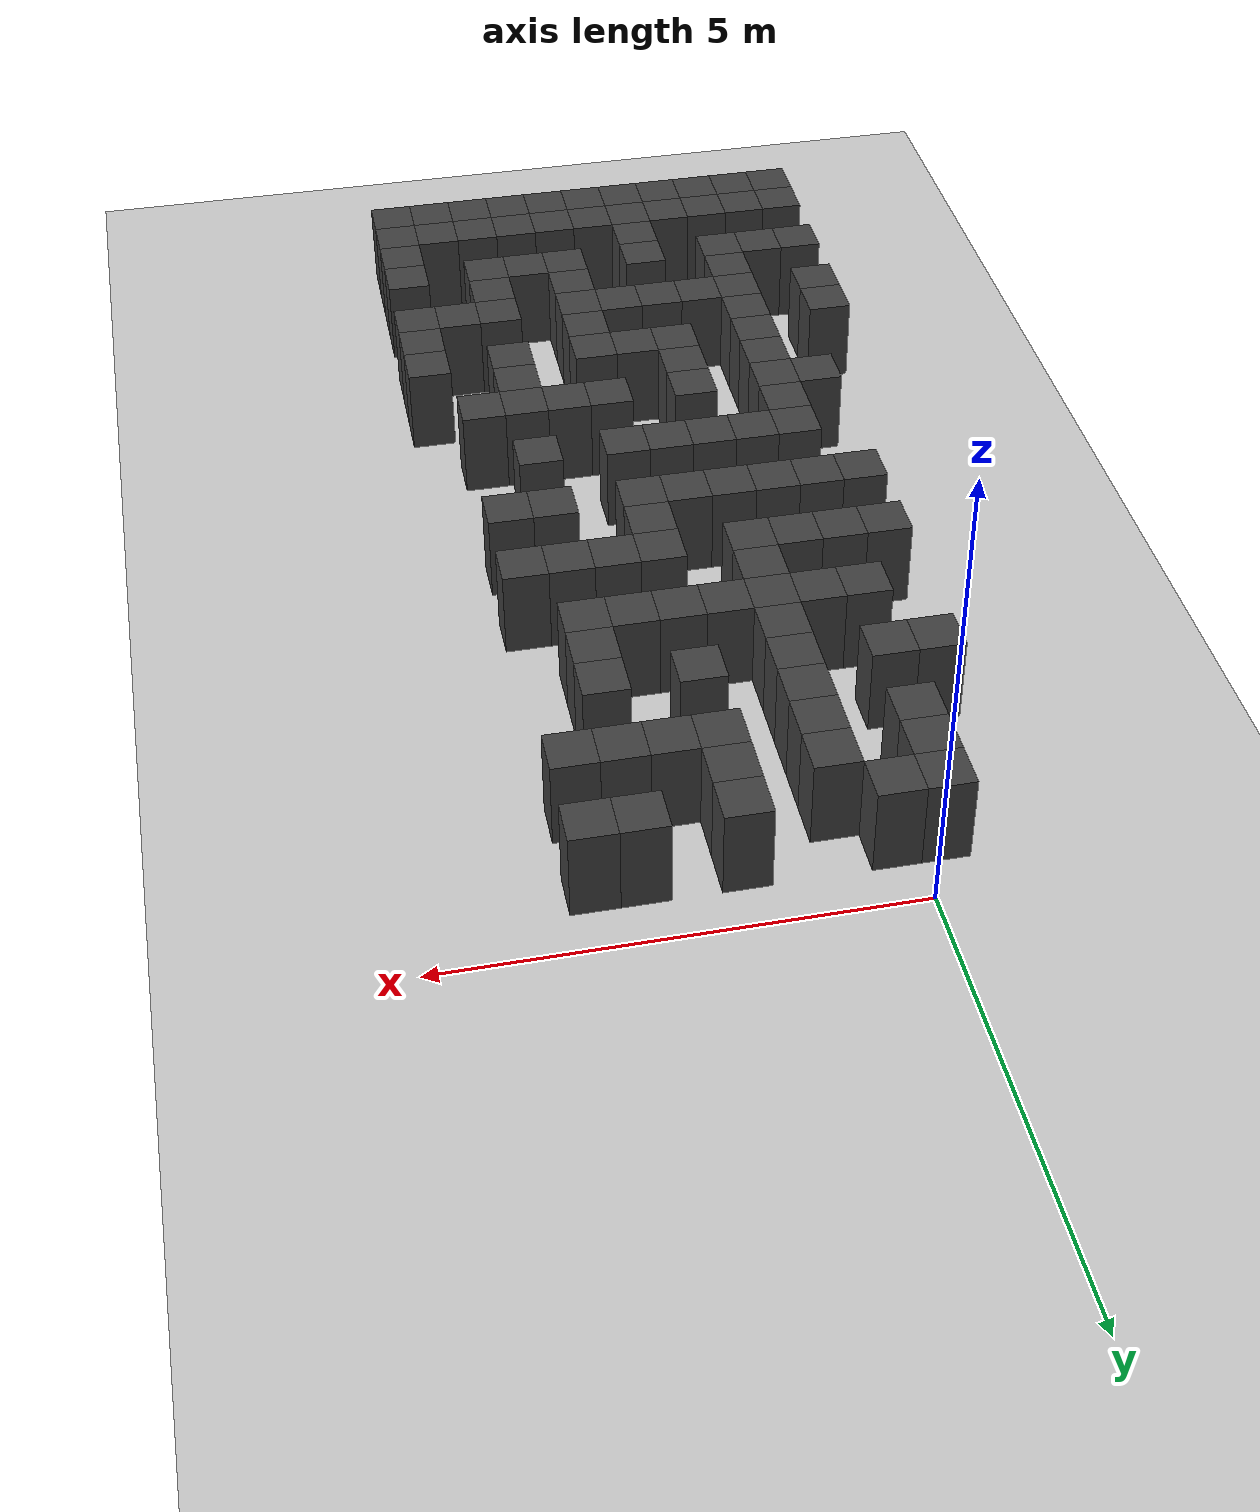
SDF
<sdf version="1.7">
 <world name="map_18553">
  <model name="ground_plane">
   <static>true</static>
   <link name="link">
    <collision name="collision">
     <geometry><plane><normal>0 0 1</normal><size>200 200</size></plane></geometry>
    </collision>
    <visual name="visual">
     <geometry><plane><normal>0 0 1</normal><size>200 200</size></plane></geometry>
     <material><ambient>0.8 0.8 0.8 1</ambient><diffuse>0.8 0.8 0.8 1</diffuse></material>
    </visual>
   </link>
  </model>
  <model name="maze_environment">
   <static>true</static>
   <link name="wall_672">
    <pose>-0.250 -0.750 0.500 0 0 0</pose>
    <collision name="col"><geometry><box><size>0.5 0.5 1.0</size></box></geometry></collision>
    <visual name="vis">
     <geometry><box><size>0.5 0.5 1.0</size></box></geometry>
     <material><ambient>0.15 0.15 0.15 1</ambient><diffuse>0.25 0.25 0.25 1</diffuse></material>
    </visual>
   </link>
   <link name="wall_673">
    <pose>0.250 -0.750 0.500 0 0 0</pose>
    <collision name="col"><geometry><box><size>0.5 0.5 1.0</size></box></geometry></collision>
    <visual name="vis">
     <geometry><box><size>0.5 0.5 1.0</size></box></geometry>
     <material><ambient>0.15 0.15 0.15 1</ambient><diffuse>0.25 0.25 0.25 1</diffuse></material>
    </visual>
   </link>
   <link name="wall_674">
    <pose>1.750 -0.750 0.500 0 0 0</pose>
    <collision name="col"><geometry><box><size>0.5 0.5 1.0</size></box></geometry></collision>
    <visual name="vis">
     <geometry><box><size>0.5 0.5 1.0</size></box></geometry>
     <material><ambient>0.15 0.15 0.15 1</ambient><diffuse>0.25 0.25 0.25 1</diffuse></material>
    </visual>
   </link>
   <link name="wall_675">
    <pose>2.750 -0.750 0.500 0 0 0</pose>
    <collision name="col"><geometry><box><size>0.5 0.5 1.0</size></box></geometry></collision>
    <visual name="vis">
     <geometry><box><size>0.5 0.5 1.0</size></box></geometry>
     <material><ambient>0.15 0.15 0.15 1</ambient><diffuse>0.25 0.25 0.25 1</diffuse></material>
    </visual>
   </link>
   <link name="wall_676">
    <pose>3.250 -0.750 0.500 0 0 0</pose>
    <collision name="col"><geometry><box><size>0.5 0.5 1.0</size></box></geometry></collision>
    <visual name="vis">
     <geometry><box><size>0.5 0.5 1.0</size></box></geometry>
     <material><ambient>0.15 0.15 0.15 1</ambient><diffuse>0.25 0.25 0.25 1</diffuse></material>
    </visual>
   </link>
   <link name="wall_697">
    <pose>-0.250 -1.250 0.500 0 0 0</pose>
    <collision name="col"><geometry><box><size>0.5 0.5 1.0</size></box></geometry></collision>
    <visual name="vis">
     <geometry><box><size>0.5 0.5 1.0</size></box></geometry>
     <material><ambient>0.15 0.15 0.15 1</ambient><diffuse>0.25 0.25 0.25 1</diffuse></material>
    </visual>
   </link>
   <link name="wall_698">
    <pose>0.750 -1.250 0.500 0 0 0</pose>
    <collision name="col"><geometry><box><size>0.5 0.5 1.0</size></box></geometry></collision>
    <visual name="vis">
     <geometry><box><size>0.5 0.5 1.0</size></box></geometry>
     <material><ambient>0.15 0.15 0.15 1</ambient><diffuse>0.25 0.25 0.25 1</diffuse></material>
    </visual>
   </link>
   <link name="wall_699">
    <pose>1.750 -1.250 0.500 0 0 0</pose>
    <collision name="col"><geometry><box><size>0.5 0.5 1.0</size></box></geometry></collision>
    <visual name="vis">
     <geometry><box><size>0.5 0.5 1.0</size></box></geometry>
     <material><ambient>0.15 0.15 0.15 1</ambient><diffuse>0.25 0.25 0.25 1</diffuse></material>
    </visual>
   </link>
   <link name="wall_722">
    <pose>-0.250 -1.750 0.500 0 0 0</pose>
    <collision name="col"><geometry><box><size>0.5 0.5 1.0</size></box></geometry></collision>
    <visual name="vis">
     <geometry><box><size>0.5 0.5 1.0</size></box></geometry>
     <material><ambient>0.15 0.15 0.15 1</ambient><diffuse>0.25 0.25 0.25 1</diffuse></material>
    </visual>
   </link>
   <link name="wall_723">
    <pose>0.750 -1.750 0.500 0 0 0</pose>
    <collision name="col"><geometry><box><size>0.5 0.5 1.0</size></box></geometry></collision>
    <visual name="vis">
     <geometry><box><size>0.5 0.5 1.0</size></box></geometry>
     <material><ambient>0.15 0.15 0.15 1</ambient><diffuse>0.25 0.25 0.25 1</diffuse></material>
    </visual>
   </link>
   <link name="wall_724">
    <pose>1.750 -1.750 0.500 0 0 0</pose>
    <collision name="col"><geometry><box><size>0.5 0.5 1.0</size></box></geometry></collision>
    <visual name="vis">
     <geometry><box><size>0.5 0.5 1.0</size></box></geometry>
     <material><ambient>0.15 0.15 0.15 1</ambient><diffuse>0.25 0.25 0.25 1</diffuse></material>
    </visual>
   </link>
   <link name="wall_725">
    <pose>2.250 -1.750 0.500 0 0 0</pose>
    <collision name="col"><geometry><box><size>0.5 0.5 1.0</size></box></geometry></collision>
    <visual name="vis">
     <geometry><box><size>0.5 0.5 1.0</size></box></geometry>
     <material><ambient>0.15 0.15 0.15 1</ambient><diffuse>0.25 0.25 0.25 1</diffuse></material>
    </visual>
   </link>
   <link name="wall_726">
    <pose>2.750 -1.750 0.500 0 0 0</pose>
    <collision name="col"><geometry><box><size>0.5 0.5 1.0</size></box></geometry></collision>
    <visual name="vis">
     <geometry><box><size>0.5 0.5 1.0</size></box></geometry>
     <material><ambient>0.15 0.15 0.15 1</ambient><diffuse>0.25 0.25 0.25 1</diffuse></material>
    </visual>
   </link>
   <link name="wall_727">
    <pose>3.250 -1.750 0.500 0 0 0</pose>
    <collision name="col"><geometry><box><size>0.5 0.5 1.0</size></box></geometry></collision>
    <visual name="vis">
     <geometry><box><size>0.5 0.5 1.0</size></box></geometry>
     <material><ambient>0.15 0.15 0.15 1</ambient><diffuse>0.25 0.25 0.25 1</diffuse></material>
    </visual>
   </link>
   <link name="wall_750">
    <pose>0.750 -2.250 0.500 0 0 0</pose>
    <collision name="col"><geometry><box><size>0.5 0.5 1.0</size></box></geometry></collision>
    <visual name="vis">
     <geometry><box><size>0.5 0.5 1.0</size></box></geometry>
     <material><ambient>0.15 0.15 0.15 1</ambient><diffuse>0.25 0.25 0.25 1</diffuse></material>
    </visual>
   </link>
   <link name="wall_772">
    <pose>-0.750 -2.750 0.500 0 0 0</pose>
    <collision name="col"><geometry><box><size>0.5 0.5 1.0</size></box></geometry></collision>
    <visual name="vis">
     <geometry><box><size>0.5 0.5 1.0</size></box></geometry>
     <material><ambient>0.15 0.15 0.15 1</ambient><diffuse>0.25 0.25 0.25 1</diffuse></material>
    </visual>
   </link>
   <link name="wall_773">
    <pose>-0.250 -2.750 0.500 0 0 0</pose>
    <collision name="col"><geometry><box><size>0.5 0.5 1.0</size></box></geometry></collision>
    <visual name="vis">
     <geometry><box><size>0.5 0.5 1.0</size></box></geometry>
     <material><ambient>0.15 0.15 0.15 1</ambient><diffuse>0.25 0.25 0.25 1</diffuse></material>
    </visual>
   </link>
   <link name="wall_774">
    <pose>0.750 -2.750 0.500 0 0 0</pose>
    <collision name="col"><geometry><box><size>0.5 0.5 1.0</size></box></geometry></collision>
    <visual name="vis">
     <geometry><box><size>0.5 0.5 1.0</size></box></geometry>
     <material><ambient>0.15 0.15 0.15 1</ambient><diffuse>0.25 0.25 0.25 1</diffuse></material>
    </visual>
   </link>
   <link name="wall_775">
    <pose>1.750 -2.750 0.500 0 0 0</pose>
    <collision name="col"><geometry><box><size>0.5 0.5 1.0</size></box></geometry></collision>
    <visual name="vis">
     <geometry><box><size>0.5 0.5 1.0</size></box></geometry>
     <material><ambient>0.15 0.15 0.15 1</ambient><diffuse>0.25 0.25 0.25 1</diffuse></material>
    </visual>
   </link>
   <link name="wall_776">
    <pose>2.750 -2.750 0.500 0 0 0</pose>
    <collision name="col"><geometry><box><size>0.5 0.5 1.0</size></box></geometry></collision>
    <visual name="vis">
     <geometry><box><size>0.5 0.5 1.0</size></box></geometry>
     <material><ambient>0.15 0.15 0.15 1</ambient><diffuse>0.25 0.25 0.25 1</diffuse></material>
    </visual>
   </link>
   <link name="wall_799">
    <pose>0.750 -3.250 0.500 0 0 0</pose>
    <collision name="col"><geometry><box><size>0.5 0.5 1.0</size></box></geometry></collision>
    <visual name="vis">
     <geometry><box><size>0.5 0.5 1.0</size></box></geometry>
     <material><ambient>0.15 0.15 0.15 1</ambient><diffuse>0.25 0.25 0.25 1</diffuse></material>
    </visual>
   </link>
   <link name="wall_800">
    <pose>2.750 -3.250 0.500 0 0 0</pose>
    <collision name="col"><geometry><box><size>0.5 0.5 1.0</size></box></geometry></collision>
    <visual name="vis">
     <geometry><box><size>0.5 0.5 1.0</size></box></geometry>
     <material><ambient>0.15 0.15 0.15 1</ambient><diffuse>0.25 0.25 0.25 1</diffuse></material>
    </visual>
   </link>
   <link name="wall_822">
    <pose>-0.250 -3.750 0.500 0 0 0</pose>
    <collision name="col"><geometry><box><size>0.5 0.5 1.0</size></box></geometry></collision>
    <visual name="vis">
     <geometry><box><size>0.5 0.5 1.0</size></box></geometry>
     <material><ambient>0.15 0.15 0.15 1</ambient><diffuse>0.25 0.25 0.25 1</diffuse></material>
    </visual>
   </link>
   <link name="wall_823">
    <pose>0.250 -3.750 0.500 0 0 0</pose>
    <collision name="col"><geometry><box><size>0.5 0.5 1.0</size></box></geometry></collision>
    <visual name="vis">
     <geometry><box><size>0.5 0.5 1.0</size></box></geometry>
     <material><ambient>0.15 0.15 0.15 1</ambient><diffuse>0.25 0.25 0.25 1</diffuse></material>
    </visual>
   </link>
   <link name="wall_824">
    <pose>0.750 -3.750 0.500 0 0 0</pose>
    <collision name="col"><geometry><box><size>0.5 0.5 1.0</size></box></geometry></collision>
    <visual name="vis">
     <geometry><box><size>0.5 0.5 1.0</size></box></geometry>
     <material><ambient>0.15 0.15 0.15 1</ambient><diffuse>0.25 0.25 0.25 1</diffuse></material>
    </visual>
   </link>
   <link name="wall_825">
    <pose>1.250 -3.750 0.500 0 0 0</pose>
    <collision name="col"><geometry><box><size>0.5 0.5 1.0</size></box></geometry></collision>
    <visual name="vis">
     <geometry><box><size>0.5 0.5 1.0</size></box></geometry>
     <material><ambient>0.15 0.15 0.15 1</ambient><diffuse>0.25 0.25 0.25 1</diffuse></material>
    </visual>
   </link>
   <link name="wall_826">
    <pose>1.750 -3.750 0.500 0 0 0</pose>
    <collision name="col"><geometry><box><size>0.5 0.5 1.0</size></box></geometry></collision>
    <visual name="vis">
     <geometry><box><size>0.5 0.5 1.0</size></box></geometry>
     <material><ambient>0.15 0.15 0.15 1</ambient><diffuse>0.25 0.25 0.25 1</diffuse></material>
    </visual>
   </link>
   <link name="wall_827">
    <pose>2.250 -3.750 0.500 0 0 0</pose>
    <collision name="col"><geometry><box><size>0.5 0.5 1.0</size></box></geometry></collision>
    <visual name="vis">
     <geometry><box><size>0.5 0.5 1.0</size></box></geometry>
     <material><ambient>0.15 0.15 0.15 1</ambient><diffuse>0.25 0.25 0.25 1</diffuse></material>
    </visual>
   </link>
   <link name="wall_828">
    <pose>2.750 -3.750 0.500 0 0 0</pose>
    <collision name="col"><geometry><box><size>0.5 0.5 1.0</size></box></geometry></collision>
    <visual name="vis">
     <geometry><box><size>0.5 0.5 1.0</size></box></geometry>
     <material><ambient>0.15 0.15 0.15 1</ambient><diffuse>0.25 0.25 0.25 1</diffuse></material>
    </visual>
   </link>
   <link name="wall_845">
    <pose>0.750 -4.250 0.500 0 0 0</pose>
    <collision name="col"><geometry><box><size>0.5 0.5 1.0</size></box></geometry></collision>
    <visual name="vis">
     <geometry><box><size>0.5 0.5 1.0</size></box></geometry>
     <material><ambient>0.15 0.15 0.15 1</ambient><diffuse>0.25 0.25 0.25 1</diffuse></material>
    </visual>
   </link>
   <link name="wall_871">
    <pose>-0.750 -4.750 0.500 0 0 0</pose>
    <collision name="col"><geometry><box><size>0.5 0.5 1.0</size></box></geometry></collision>
    <visual name="vis">
     <geometry><box><size>0.5 0.5 1.0</size></box></geometry>
     <material><ambient>0.15 0.15 0.15 1</ambient><diffuse>0.25 0.25 0.25 1</diffuse></material>
    </visual>
   </link>
   <link name="wall_872">
    <pose>-0.250 -4.750 0.500 0 0 0</pose>
    <collision name="col"><geometry><box><size>0.5 0.5 1.0</size></box></geometry></collision>
    <visual name="vis">
     <geometry><box><size>0.5 0.5 1.0</size></box></geometry>
     <material><ambient>0.15 0.15 0.15 1</ambient><diffuse>0.25 0.25 0.25 1</diffuse></material>
    </visual>
   </link>
   <link name="wall_873">
    <pose>0.250 -4.750 0.500 0 0 0</pose>
    <collision name="col"><geometry><box><size>0.5 0.5 1.0</size></box></geometry></collision>
    <visual name="vis">
     <geometry><box><size>0.5 0.5 1.0</size></box></geometry>
     <material><ambient>0.15 0.15 0.15 1</ambient><diffuse>0.25 0.25 0.25 1</diffuse></material>
    </visual>
   </link>
   <link name="wall_874">
    <pose>0.750 -4.750 0.500 0 0 0</pose>
    <collision name="col"><geometry><box><size>0.5 0.5 1.0</size></box></geometry></collision>
    <visual name="vis">
     <geometry><box><size>0.5 0.5 1.0</size></box></geometry>
     <material><ambient>0.15 0.15 0.15 1</ambient><diffuse>0.25 0.25 0.25 1</diffuse></material>
    </visual>
   </link>
   <link name="wall_875">
    <pose>1.750 -4.750 0.500 0 0 0</pose>
    <collision name="col"><geometry><box><size>0.5 0.5 1.0</size></box></geometry></collision>
    <visual name="vis">
     <geometry><box><size>0.5 0.5 1.0</size></box></geometry>
     <material><ambient>0.15 0.15 0.15 1</ambient><diffuse>0.25 0.25 0.25 1</diffuse></material>
    </visual>
   </link>
   <link name="wall_876">
    <pose>2.250 -4.750 0.500 0 0 0</pose>
    <collision name="col"><geometry><box><size>0.5 0.5 1.0</size></box></geometry></collision>
    <visual name="vis">
     <geometry><box><size>0.5 0.5 1.0</size></box></geometry>
     <material><ambient>0.15 0.15 0.15 1</ambient><diffuse>0.25 0.25 0.25 1</diffuse></material>
    </visual>
   </link>
   <link name="wall_877">
    <pose>2.750 -4.750 0.500 0 0 0</pose>
    <collision name="col"><geometry><box><size>0.5 0.5 1.0</size></box></geometry></collision>
    <visual name="vis">
     <geometry><box><size>0.5 0.5 1.0</size></box></geometry>
     <material><ambient>0.15 0.15 0.15 1</ambient><diffuse>0.25 0.25 0.25 1</diffuse></material>
    </visual>
   </link>
   <link name="wall_878">
    <pose>3.250 -4.750 0.500 0 0 0</pose>
    <collision name="col"><geometry><box><size>0.5 0.5 1.0</size></box></geometry></collision>
    <visual name="vis">
     <geometry><box><size>0.5 0.5 1.0</size></box></geometry>
     <material><ambient>0.15 0.15 0.15 1</ambient><diffuse>0.25 0.25 0.25 1</diffuse></material>
    </visual>
   </link>
   <link name="wall_896">
    <pose>1.750 -5.250 0.500 0 0 0</pose>
    <collision name="col"><geometry><box><size>0.5 0.5 1.0</size></box></geometry></collision>
    <visual name="vis">
     <geometry><box><size>0.5 0.5 1.0</size></box></geometry>
     <material><ambient>0.15 0.15 0.15 1</ambient><diffuse>0.25 0.25 0.25 1</diffuse></material>
    </visual>
   </link>
   <link name="wall_924">
    <pose>-0.750 -5.750 0.500 0 0 0</pose>
    <collision name="col"><geometry><box><size>0.5 0.5 1.0</size></box></geometry></collision>
    <visual name="vis">
     <geometry><box><size>0.5 0.5 1.0</size></box></geometry>
     <material><ambient>0.15 0.15 0.15 1</ambient><diffuse>0.25 0.25 0.25 1</diffuse></material>
    </visual>
   </link>
   <link name="wall_925">
    <pose>-0.250 -5.750 0.500 0 0 0</pose>
    <collision name="col"><geometry><box><size>0.5 0.5 1.0</size></box></geometry></collision>
    <visual name="vis">
     <geometry><box><size>0.5 0.5 1.0</size></box></geometry>
     <material><ambient>0.15 0.15 0.15 1</ambient><diffuse>0.25 0.25 0.25 1</diffuse></material>
    </visual>
   </link>
   <link name="wall_926">
    <pose>0.250 -5.750 0.500 0 0 0</pose>
    <collision name="col"><geometry><box><size>0.5 0.5 1.0</size></box></geometry></collision>
    <visual name="vis">
     <geometry><box><size>0.5 0.5 1.0</size></box></geometry>
     <material><ambient>0.15 0.15 0.15 1</ambient><diffuse>0.25 0.25 0.25 1</diffuse></material>
    </visual>
   </link>
   <link name="wall_927">
    <pose>0.750 -5.750 0.500 0 0 0</pose>
    <collision name="col"><geometry><box><size>0.5 0.5 1.0</size></box></geometry></collision>
    <visual name="vis">
     <geometry><box><size>0.5 0.5 1.0</size></box></geometry>
     <material><ambient>0.15 0.15 0.15 1</ambient><diffuse>0.25 0.25 0.25 1</diffuse></material>
    </visual>
   </link>
   <link name="wall_928">
    <pose>1.250 -5.750 0.500 0 0 0</pose>
    <collision name="col"><geometry><box><size>0.5 0.5 1.0</size></box></geometry></collision>
    <visual name="vis">
     <geometry><box><size>0.5 0.5 1.0</size></box></geometry>
     <material><ambient>0.15 0.15 0.15 1</ambient><diffuse>0.25 0.25 0.25 1</diffuse></material>
    </visual>
   </link>
   <link name="wall_929">
    <pose>1.750 -5.750 0.500 0 0 0</pose>
    <collision name="col"><geometry><box><size>0.5 0.5 1.0</size></box></geometry></collision>
    <visual name="vis">
     <geometry><box><size>0.5 0.5 1.0</size></box></geometry>
     <material><ambient>0.15 0.15 0.15 1</ambient><diffuse>0.25 0.25 0.25 1</diffuse></material>
    </visual>
   </link>
   <link name="wall_930">
    <pose>2.750 -5.750 0.500 0 0 0</pose>
    <collision name="col"><geometry><box><size>0.5 0.5 1.0</size></box></geometry></collision>
    <visual name="vis">
     <geometry><box><size>0.5 0.5 1.0</size></box></geometry>
     <material><ambient>0.15 0.15 0.15 1</ambient><diffuse>0.25 0.25 0.25 1</diffuse></material>
    </visual>
   </link>
   <link name="wall_931">
    <pose>3.250 -5.750 0.500 0 0 0</pose>
    <collision name="col"><geometry><box><size>0.5 0.5 1.0</size></box></geometry></collision>
    <visual name="vis">
     <geometry><box><size>0.5 0.5 1.0</size></box></geometry>
     <material><ambient>0.15 0.15 0.15 1</ambient><diffuse>0.25 0.25 0.25 1</diffuse></material>
    </visual>
   </link>
   <link name="wall_971">
    <pose>-0.250 -6.750 0.500 0 0 0</pose>
    <collision name="col"><geometry><box><size>0.5 0.5 1.0</size></box></geometry></collision>
    <visual name="vis">
     <geometry><box><size>0.5 0.5 1.0</size></box></geometry>
     <material><ambient>0.15 0.15 0.15 1</ambient><diffuse>0.25 0.25 0.25 1</diffuse></material>
    </visual>
   </link>
   <link name="wall_972">
    <pose>0.250 -6.750 0.500 0 0 0</pose>
    <collision name="col"><geometry><box><size>0.5 0.5 1.0</size></box></geometry></collision>
    <visual name="vis">
     <geometry><box><size>0.5 0.5 1.0</size></box></geometry>
     <material><ambient>0.15 0.15 0.15 1</ambient><diffuse>0.25 0.25 0.25 1</diffuse></material>
    </visual>
   </link>
   <link name="wall_973">
    <pose>0.750 -6.750 0.500 0 0 0</pose>
    <collision name="col"><geometry><box><size>0.5 0.5 1.0</size></box></geometry></collision>
    <visual name="vis">
     <geometry><box><size>0.5 0.5 1.0</size></box></geometry>
     <material><ambient>0.15 0.15 0.15 1</ambient><diffuse>0.25 0.25 0.25 1</diffuse></material>
    </visual>
   </link>
   <link name="wall_974">
    <pose>1.250 -6.750 0.500 0 0 0</pose>
    <collision name="col"><geometry><box><size>0.5 0.5 1.0</size></box></geometry></collision>
    <visual name="vis">
     <geometry><box><size>0.5 0.5 1.0</size></box></geometry>
     <material><ambient>0.15 0.15 0.15 1</ambient><diffuse>0.25 0.25 0.25 1</diffuse></material>
    </visual>
   </link>
   <link name="wall_975">
    <pose>1.750 -6.750 0.500 0 0 0</pose>
    <collision name="col"><geometry><box><size>0.5 0.5 1.0</size></box></geometry></collision>
    <visual name="vis">
     <geometry><box><size>0.5 0.5 1.0</size></box></geometry>
     <material><ambient>0.15 0.15 0.15 1</ambient><diffuse>0.25 0.25 0.25 1</diffuse></material>
    </visual>
   </link>
   <link name="wall_976">
    <pose>2.750 -6.750 0.500 0 0 0</pose>
    <collision name="col"><geometry><box><size>0.5 0.5 1.0</size></box></geometry></collision>
    <visual name="vis">
     <geometry><box><size>0.5 0.5 1.0</size></box></geometry>
     <material><ambient>0.15 0.15 0.15 1</ambient><diffuse>0.25 0.25 0.25 1</diffuse></material>
    </visual>
   </link>
   <link name="wall_998">
    <pose>-0.250 -7.250 0.500 0 0 0</pose>
    <collision name="col"><geometry><box><size>0.5 0.5 1.0</size></box></geometry></collision>
    <visual name="vis">
     <geometry><box><size>0.5 0.5 1.0</size></box></geometry>
     <material><ambient>0.15 0.15 0.15 1</ambient><diffuse>0.25 0.25 0.25 1</diffuse></material>
    </visual>
   </link>
   <link name="wall_1024">
    <pose>-0.750 -7.750 0.500 0 0 0</pose>
    <collision name="col"><geometry><box><size>0.5 0.5 1.0</size></box></geometry></collision>
    <visual name="vis">
     <geometry><box><size>0.5 0.5 1.0</size></box></geometry>
     <material><ambient>0.15 0.15 0.15 1</ambient><diffuse>0.25 0.25 0.25 1</diffuse></material>
    </visual>
   </link>
   <link name="wall_1025">
    <pose>-0.250 -7.750 0.500 0 0 0</pose>
    <collision name="col"><geometry><box><size>0.5 0.5 1.0</size></box></geometry></collision>
    <visual name="vis">
     <geometry><box><size>0.5 0.5 1.0</size></box></geometry>
     <material><ambient>0.15 0.15 0.15 1</ambient><diffuse>0.25 0.25 0.25 1</diffuse></material>
    </visual>
   </link>
   <link name="wall_1026">
    <pose>0.750 -7.750 0.500 0 0 0</pose>
    <collision name="col"><geometry><box><size>0.5 0.5 1.0</size></box></geometry></collision>
    <visual name="vis">
     <geometry><box><size>0.5 0.5 1.0</size></box></geometry>
     <material><ambient>0.15 0.15 0.15 1</ambient><diffuse>0.25 0.25 0.25 1</diffuse></material>
    </visual>
   </link>
   <link name="wall_1027">
    <pose>1.750 -7.750 0.500 0 0 0</pose>
    <collision name="col"><geometry><box><size>0.5 0.5 1.0</size></box></geometry></collision>
    <visual name="vis">
     <geometry><box><size>0.5 0.5 1.0</size></box></geometry>
     <material><ambient>0.15 0.15 0.15 1</ambient><diffuse>0.25 0.25 0.25 1</diffuse></material>
    </visual>
   </link>
   <link name="wall_1028">
    <pose>2.250 -7.750 0.500 0 0 0</pose>
    <collision name="col"><geometry><box><size>0.5 0.5 1.0</size></box></geometry></collision>
    <visual name="vis">
     <geometry><box><size>0.5 0.5 1.0</size></box></geometry>
     <material><ambient>0.15 0.15 0.15 1</ambient><diffuse>0.25 0.25 0.25 1</diffuse></material>
    </visual>
   </link>
   <link name="wall_1029">
    <pose>2.750 -7.750 0.500 0 0 0</pose>
    <collision name="col"><geometry><box><size>0.5 0.5 1.0</size></box></geometry></collision>
    <visual name="vis">
     <geometry><box><size>0.5 0.5 1.0</size></box></geometry>
     <material><ambient>0.15 0.15 0.15 1</ambient><diffuse>0.25 0.25 0.25 1</diffuse></material>
    </visual>
   </link>
   <link name="wall_1030">
    <pose>3.250 -7.750 0.500 0 0 0</pose>
    <collision name="col"><geometry><box><size>0.5 0.5 1.0</size></box></geometry></collision>
    <visual name="vis">
     <geometry><box><size>0.5 0.5 1.0</size></box></geometry>
     <material><ambient>0.15 0.15 0.15 1</ambient><diffuse>0.25 0.25 0.25 1</diffuse></material>
    </visual>
   </link>
   <link name="wall_1046">
    <pose>-0.250 -8.250 0.500 0 0 0</pose>
    <collision name="col"><geometry><box><size>0.5 0.5 1.0</size></box></geometry></collision>
    <visual name="vis">
     <geometry><box><size>0.5 0.5 1.0</size></box></geometry>
     <material><ambient>0.15 0.15 0.15 1</ambient><diffuse>0.25 0.25 0.25 1</diffuse></material>
    </visual>
   </link>
   <link name="wall_1047">
    <pose>0.750 -8.250 0.500 0 0 0</pose>
    <collision name="col"><geometry><box><size>0.5 0.5 1.0</size></box></geometry></collision>
    <visual name="vis">
     <geometry><box><size>0.5 0.5 1.0</size></box></geometry>
     <material><ambient>0.15 0.15 0.15 1</ambient><diffuse>0.25 0.25 0.25 1</diffuse></material>
    </visual>
   </link>
   <link name="wall_1048">
    <pose>2.750 -8.250 0.500 0 0 0</pose>
    <collision name="col"><geometry><box><size>0.5 0.5 1.0</size></box></geometry></collision>
    <visual name="vis">
     <geometry><box><size>0.5 0.5 1.0</size></box></geometry>
     <material><ambient>0.15 0.15 0.15 1</ambient><diffuse>0.25 0.25 0.25 1</diffuse></material>
    </visual>
   </link>
   <link name="wall_1073">
    <pose>-0.250 -8.750 0.500 0 0 0</pose>
    <collision name="col"><geometry><box><size>0.5 0.5 1.0</size></box></geometry></collision>
    <visual name="vis">
     <geometry><box><size>0.5 0.5 1.0</size></box></geometry>
     <material><ambient>0.15 0.15 0.15 1</ambient><diffuse>0.25 0.25 0.25 1</diffuse></material>
    </visual>
   </link>
   <link name="wall_1074">
    <pose>0.750 -8.750 0.500 0 0 0</pose>
    <collision name="col"><geometry><box><size>0.5 0.5 1.0</size></box></geometry></collision>
    <visual name="vis">
     <geometry><box><size>0.5 0.5 1.0</size></box></geometry>
     <material><ambient>0.15 0.15 0.15 1</ambient><diffuse>0.25 0.25 0.25 1</diffuse></material>
    </visual>
   </link>
   <link name="wall_1075">
    <pose>1.250 -8.750 0.500 0 0 0</pose>
    <collision name="col"><geometry><box><size>0.5 0.5 1.0</size></box></geometry></collision>
    <visual name="vis">
     <geometry><box><size>0.5 0.5 1.0</size></box></geometry>
     <material><ambient>0.15 0.15 0.15 1</ambient><diffuse>0.25 0.25 0.25 1</diffuse></material>
    </visual>
   </link>
   <link name="wall_1076">
    <pose>1.750 -8.750 0.500 0 0 0</pose>
    <collision name="col"><geometry><box><size>0.5 0.5 1.0</size></box></geometry></collision>
    <visual name="vis">
     <geometry><box><size>0.5 0.5 1.0</size></box></geometry>
     <material><ambient>0.15 0.15 0.15 1</ambient><diffuse>0.25 0.25 0.25 1</diffuse></material>
    </visual>
   </link>
   <link name="wall_1077">
    <pose>2.750 -8.750 0.500 0 0 0</pose>
    <collision name="col"><geometry><box><size>0.5 0.5 1.0</size></box></geometry></collision>
    <visual name="vis">
     <geometry><box><size>0.5 0.5 1.0</size></box></geometry>
     <material><ambient>0.15 0.15 0.15 1</ambient><diffuse>0.25 0.25 0.25 1</diffuse></material>
    </visual>
   </link>
   <link name="wall_1078">
    <pose>3.750 -8.750 0.500 0 0 0</pose>
    <collision name="col"><geometry><box><size>0.5 0.5 1.0</size></box></geometry></collision>
    <visual name="vis">
     <geometry><box><size>0.5 0.5 1.0</size></box></geometry>
     <material><ambient>0.15 0.15 0.15 1</ambient><diffuse>0.25 0.25 0.25 1</diffuse></material>
    </visual>
   </link>
   <link name="wall_1098">
    <pose>-1.250 -9.250 0.500 0 0 0</pose>
    <collision name="col"><geometry><box><size>0.5 0.5 1.0</size></box></geometry></collision>
    <visual name="vis">
     <geometry><box><size>0.5 0.5 1.0</size></box></geometry>
     <material><ambient>0.15 0.15 0.15 1</ambient><diffuse>0.25 0.25 0.25 1</diffuse></material>
    </visual>
   </link>
   <link name="wall_1099">
    <pose>-0.250 -9.250 0.500 0 0 0</pose>
    <collision name="col"><geometry><box><size>0.5 0.5 1.0</size></box></geometry></collision>
    <visual name="vis">
     <geometry><box><size>0.5 0.5 1.0</size></box></geometry>
     <material><ambient>0.15 0.15 0.15 1</ambient><diffuse>0.25 0.25 0.25 1</diffuse></material>
    </visual>
   </link>
   <link name="wall_1100">
    <pose>1.750 -9.250 0.500 0 0 0</pose>
    <collision name="col"><geometry><box><size>0.5 0.5 1.0</size></box></geometry></collision>
    <visual name="vis">
     <geometry><box><size>0.5 0.5 1.0</size></box></geometry>
     <material><ambient>0.15 0.15 0.15 1</ambient><diffuse>0.25 0.25 0.25 1</diffuse></material>
    </visual>
   </link>
   <link name="wall_1101">
    <pose>3.750 -9.250 0.500 0 0 0</pose>
    <collision name="col"><geometry><box><size>0.5 0.5 1.0</size></box></geometry></collision>
    <visual name="vis">
     <geometry><box><size>0.5 0.5 1.0</size></box></geometry>
     <material><ambient>0.15 0.15 0.15 1</ambient><diffuse>0.25 0.25 0.25 1</diffuse></material>
    </visual>
   </link>
   <link name="wall_1122">
    <pose>-1.250 -9.750 0.500 0 0 0</pose>
    <collision name="col"><geometry><box><size>0.5 0.5 1.0</size></box></geometry></collision>
    <visual name="vis">
     <geometry><box><size>0.5 0.5 1.0</size></box></geometry>
     <material><ambient>0.15 0.15 0.15 1</ambient><diffuse>0.25 0.25 0.25 1</diffuse></material>
    </visual>
   </link>
   <link name="wall_1123">
    <pose>-0.250 -9.750 0.500 0 0 0</pose>
    <collision name="col"><geometry><box><size>0.5 0.5 1.0</size></box></geometry></collision>
    <visual name="vis">
     <geometry><box><size>0.5 0.5 1.0</size></box></geometry>
     <material><ambient>0.15 0.15 0.15 1</ambient><diffuse>0.25 0.25 0.25 1</diffuse></material>
    </visual>
   </link>
   <link name="wall_1124">
    <pose>0.250 -9.750 0.500 0 0 0</pose>
    <collision name="col"><geometry><box><size>0.5 0.5 1.0</size></box></geometry></collision>
    <visual name="vis">
     <geometry><box><size>0.5 0.5 1.0</size></box></geometry>
     <material><ambient>0.15 0.15 0.15 1</ambient><diffuse>0.25 0.25 0.25 1</diffuse></material>
    </visual>
   </link>
   <link name="wall_1125">
    <pose>0.750 -9.750 0.500 0 0 0</pose>
    <collision name="col"><geometry><box><size>0.5 0.5 1.0</size></box></geometry></collision>
    <visual name="vis">
     <geometry><box><size>0.5 0.5 1.0</size></box></geometry>
     <material><ambient>0.15 0.15 0.15 1</ambient><diffuse>0.25 0.25 0.25 1</diffuse></material>
    </visual>
   </link>
   <link name="wall_1126">
    <pose>1.250 -9.750 0.500 0 0 0</pose>
    <collision name="col"><geometry><box><size>0.5 0.5 1.0</size></box></geometry></collision>
    <visual name="vis">
     <geometry><box><size>0.5 0.5 1.0</size></box></geometry>
     <material><ambient>0.15 0.15 0.15 1</ambient><diffuse>0.25 0.25 0.25 1</diffuse></material>
    </visual>
   </link>
   <link name="wall_1127">
    <pose>1.750 -9.750 0.500 0 0 0</pose>
    <collision name="col"><geometry><box><size>0.5 0.5 1.0</size></box></geometry></collision>
    <visual name="vis">
     <geometry><box><size>0.5 0.5 1.0</size></box></geometry>
     <material><ambient>0.15 0.15 0.15 1</ambient><diffuse>0.25 0.25 0.25 1</diffuse></material>
    </visual>
   </link>
   <link name="wall_1128">
    <pose>2.750 -9.750 0.500 0 0 0</pose>
    <collision name="col"><geometry><box><size>0.5 0.5 1.0</size></box></geometry></collision>
    <visual name="vis">
     <geometry><box><size>0.5 0.5 1.0</size></box></geometry>
     <material><ambient>0.15 0.15 0.15 1</ambient><diffuse>0.25 0.25 0.25 1</diffuse></material>
    </visual>
   </link>
   <link name="wall_1129">
    <pose>3.250 -9.750 0.500 0 0 0</pose>
    <collision name="col"><geometry><box><size>0.5 0.5 1.0</size></box></geometry></collision>
    <visual name="vis">
     <geometry><box><size>0.5 0.5 1.0</size></box></geometry>
     <material><ambient>0.15 0.15 0.15 1</ambient><diffuse>0.25 0.25 0.25 1</diffuse></material>
    </visual>
   </link>
   <link name="wall_1130">
    <pose>3.750 -9.750 0.500 0 0 0</pose>
    <collision name="col"><geometry><box><size>0.5 0.5 1.0</size></box></geometry></collision>
    <visual name="vis">
     <geometry><box><size>0.5 0.5 1.0</size></box></geometry>
     <material><ambient>0.15 0.15 0.15 1</ambient><diffuse>0.25 0.25 0.25 1</diffuse></material>
    </visual>
   </link>
   <link name="wall_1148">
    <pose>-0.250 -10.250 0.500 0 0 0</pose>
    <collision name="col"><geometry><box><size>0.5 0.5 1.0</size></box></geometry></collision>
    <visual name="vis">
     <geometry><box><size>0.5 0.5 1.0</size></box></geometry>
     <material><ambient>0.15 0.15 0.15 1</ambient><diffuse>0.25 0.25 0.25 1</diffuse></material>
    </visual>
   </link>
   <link name="wall_1149">
    <pose>1.750 -10.250 0.500 0 0 0</pose>
    <collision name="col"><geometry><box><size>0.5 0.5 1.0</size></box></geometry></collision>
    <visual name="vis">
     <geometry><box><size>0.5 0.5 1.0</size></box></geometry>
     <material><ambient>0.15 0.15 0.15 1</ambient><diffuse>0.25 0.25 0.25 1</diffuse></material>
    </visual>
   </link>
   <link name="wall_1150">
    <pose>2.750 -10.250 0.500 0 0 0</pose>
    <collision name="col"><geometry><box><size>0.5 0.5 1.0</size></box></geometry></collision>
    <visual name="vis">
     <geometry><box><size>0.5 0.5 1.0</size></box></geometry>
     <material><ambient>0.15 0.15 0.15 1</ambient><diffuse>0.25 0.25 0.25 1</diffuse></material>
    </visual>
   </link>
   <link name="wall_1177">
    <pose>-1.250 -10.750 0.500 0 0 0</pose>
    <collision name="col"><geometry><box><size>0.5 0.5 1.0</size></box></geometry></collision>
    <visual name="vis">
     <geometry><box><size>0.5 0.5 1.0</size></box></geometry>
     <material><ambient>0.15 0.15 0.15 1</ambient><diffuse>0.25 0.25 0.25 1</diffuse></material>
    </visual>
   </link>
   <link name="wall_1178">
    <pose>-0.750 -10.750 0.500 0 0 0</pose>
    <collision name="col"><geometry><box><size>0.5 0.5 1.0</size></box></geometry></collision>
    <visual name="vis">
     <geometry><box><size>0.5 0.5 1.0</size></box></geometry>
     <material><ambient>0.15 0.15 0.15 1</ambient><diffuse>0.25 0.25 0.25 1</diffuse></material>
    </visual>
   </link>
   <link name="wall_1179">
    <pose>-0.250 -10.750 0.500 0 0 0</pose>
    <collision name="col"><geometry><box><size>0.5 0.5 1.0</size></box></geometry></collision>
    <visual name="vis">
     <geometry><box><size>0.5 0.5 1.0</size></box></geometry>
     <material><ambient>0.15 0.15 0.15 1</ambient><diffuse>0.25 0.25 0.25 1</diffuse></material>
    </visual>
   </link>
   <link name="wall_1180">
    <pose>0.750 -10.750 0.500 0 0 0</pose>
    <collision name="col"><geometry><box><size>0.5 0.5 1.0</size></box></geometry></collision>
    <visual name="vis">
     <geometry><box><size>0.5 0.5 1.0</size></box></geometry>
     <material><ambient>0.15 0.15 0.15 1</ambient><diffuse>0.25 0.25 0.25 1</diffuse></material>
    </visual>
   </link>
   <link name="wall_1181">
    <pose>1.750 -10.750 0.500 0 0 0</pose>
    <collision name="col"><geometry><box><size>0.5 0.5 1.0</size></box></geometry></collision>
    <visual name="vis">
     <geometry><box><size>0.5 0.5 1.0</size></box></geometry>
     <material><ambient>0.15 0.15 0.15 1</ambient><diffuse>0.25 0.25 0.25 1</diffuse></material>
    </visual>
   </link>
   <link name="wall_1182">
    <pose>2.250 -10.750 0.500 0 0 0</pose>
    <collision name="col"><geometry><box><size>0.5 0.5 1.0</size></box></geometry></collision>
    <visual name="vis">
     <geometry><box><size>0.5 0.5 1.0</size></box></geometry>
     <material><ambient>0.15 0.15 0.15 1</ambient><diffuse>0.25 0.25 0.25 1</diffuse></material>
    </visual>
   </link>
   <link name="wall_1183">
    <pose>2.750 -10.750 0.500 0 0 0</pose>
    <collision name="col"><geometry><box><size>0.5 0.5 1.0</size></box></geometry></collision>
    <visual name="vis">
     <geometry><box><size>0.5 0.5 1.0</size></box></geometry>
     <material><ambient>0.15 0.15 0.15 1</ambient><diffuse>0.25 0.25 0.25 1</diffuse></material>
    </visual>
   </link>
   <link name="wall_1184">
    <pose>3.750 -10.750 0.500 0 0 0</pose>
    <collision name="col"><geometry><box><size>0.5 0.5 1.0</size></box></geometry></collision>
    <visual name="vis">
     <geometry><box><size>0.5 0.5 1.0</size></box></geometry>
     <material><ambient>0.15 0.15 0.15 1</ambient><diffuse>0.25 0.25 0.25 1</diffuse></material>
    </visual>
   </link>
   <link name="wall_1197">
    <pose>0.750 -11.250 0.500 0 0 0</pose>
    <collision name="col"><geometry><box><size>0.5 0.5 1.0</size></box></geometry></collision>
    <visual name="vis">
     <geometry><box><size>0.5 0.5 1.0</size></box></geometry>
     <material><ambient>0.15 0.15 0.15 1</ambient><diffuse>0.25 0.25 0.25 1</diffuse></material>
    </visual>
   </link>
   <link name="wall_1198">
    <pose>3.750 -11.250 0.500 0 0 0</pose>
    <collision name="col"><geometry><box><size>0.5 0.5 1.0</size></box></geometry></collision>
    <visual name="vis">
     <geometry><box><size>0.5 0.5 1.0</size></box></geometry>
     <material><ambient>0.15 0.15 0.15 1</ambient><diffuse>0.25 0.25 0.25 1</diffuse></material>
    </visual>
   </link>
   <link name="wall_1224">
    <pose>-1.250 -11.750 0.500 0 0 0</pose>
    <collision name="col"><geometry><box><size>0.5 0.5 1.0</size></box></geometry></collision>
    <visual name="vis">
     <geometry><box><size>0.5 0.5 1.0</size></box></geometry>
     <material><ambient>0.15 0.15 0.15 1</ambient><diffuse>0.25 0.25 0.25 1</diffuse></material>
    </visual>
   </link>
   <link name="wall_1225">
    <pose>-0.750 -11.750 0.500 0 0 0</pose>
    <collision name="col"><geometry><box><size>0.5 0.5 1.0</size></box></geometry></collision>
    <visual name="vis">
     <geometry><box><size>0.5 0.5 1.0</size></box></geometry>
     <material><ambient>0.15 0.15 0.15 1</ambient><diffuse>0.25 0.25 0.25 1</diffuse></material>
    </visual>
   </link>
   <link name="wall_1226">
    <pose>-0.250 -11.750 0.500 0 0 0</pose>
    <collision name="col"><geometry><box><size>0.5 0.5 1.0</size></box></geometry></collision>
    <visual name="vis">
     <geometry><box><size>0.5 0.5 1.0</size></box></geometry>
     <material><ambient>0.15 0.15 0.15 1</ambient><diffuse>0.25 0.25 0.25 1</diffuse></material>
    </visual>
   </link>
   <link name="wall_1227">
    <pose>0.250 -11.750 0.500 0 0 0</pose>
    <collision name="col"><geometry><box><size>0.5 0.5 1.0</size></box></geometry></collision>
    <visual name="vis">
     <geometry><box><size>0.5 0.5 1.0</size></box></geometry>
     <material><ambient>0.15 0.15 0.15 1</ambient><diffuse>0.25 0.25 0.25 1</diffuse></material>
    </visual>
   </link>
   <link name="wall_1228">
    <pose>0.750 -11.750 0.500 0 0 0</pose>
    <collision name="col"><geometry><box><size>0.5 0.5 1.0</size></box></geometry></collision>
    <visual name="vis">
     <geometry><box><size>0.5 0.5 1.0</size></box></geometry>
     <material><ambient>0.15 0.15 0.15 1</ambient><diffuse>0.25 0.25 0.25 1</diffuse></material>
    </visual>
   </link>
   <link name="wall_1229">
    <pose>1.250 -11.750 0.500 0 0 0</pose>
    <collision name="col"><geometry><box><size>0.5 0.5 1.0</size></box></geometry></collision>
    <visual name="vis">
     <geometry><box><size>0.5 0.5 1.0</size></box></geometry>
     <material><ambient>0.15 0.15 0.15 1</ambient><diffuse>0.25 0.25 0.25 1</diffuse></material>
    </visual>
   </link>
   <link name="wall_1230">
    <pose>1.750 -11.750 0.500 0 0 0</pose>
    <collision name="col"><geometry><box><size>0.5 0.5 1.0</size></box></geometry></collision>
    <visual name="vis">
     <geometry><box><size>0.5 0.5 1.0</size></box></geometry>
     <material><ambient>0.15 0.15 0.15 1</ambient><diffuse>0.25 0.25 0.25 1</diffuse></material>
    </visual>
   </link>
   <link name="wall_1231">
    <pose>2.250 -11.750 0.500 0 0 0</pose>
    <collision name="col"><geometry><box><size>0.5 0.5 1.0</size></box></geometry></collision>
    <visual name="vis">
     <geometry><box><size>0.5 0.5 1.0</size></box></geometry>
     <material><ambient>0.15 0.15 0.15 1</ambient><diffuse>0.25 0.25 0.25 1</diffuse></material>
    </visual>
   </link>
   <link name="wall_1232">
    <pose>2.750 -11.750 0.500 0 0 0</pose>
    <collision name="col"><geometry><box><size>0.5 0.5 1.0</size></box></geometry></collision>
    <visual name="vis">
     <geometry><box><size>0.5 0.5 1.0</size></box></geometry>
     <material><ambient>0.15 0.15 0.15 1</ambient><diffuse>0.25 0.25 0.25 1</diffuse></material>
    </visual>
   </link>
   <link name="wall_1233">
    <pose>3.250 -11.750 0.500 0 0 0</pose>
    <collision name="col"><geometry><box><size>0.5 0.5 1.0</size></box></geometry></collision>
    <visual name="vis">
     <geometry><box><size>0.5 0.5 1.0</size></box></geometry>
     <material><ambient>0.15 0.15 0.15 1</ambient><diffuse>0.25 0.25 0.25 1</diffuse></material>
    </visual>
   </link>
   <link name="wall_1234">
    <pose>3.750 -11.750 0.500 0 0 0</pose>
    <collision name="col"><geometry><box><size>0.5 0.5 1.0</size></box></geometry></collision>
    <visual name="vis">
     <geometry><box><size>0.5 0.5 1.0</size></box></geometry>
     <material><ambient>0.15 0.15 0.15 1</ambient><diffuse>0.25 0.25 0.25 1</diffuse></material>
    </visual>
   </link>
   <link name="wall_1272">
    <pose>-1.250 -12.250 0.500 0 0 0</pose>
    <collision name="col"><geometry><box><size>0.5 0.5 1.0</size></box></geometry></collision>
    <visual name="vis">
     <geometry><box><size>0.5 0.5 1.0</size></box></geometry>
     <material><ambient>0.15 0.15 0.15 1</ambient><diffuse>0.25 0.25 0.25 1</diffuse></material>
    </visual>
   </link>
   <link name="wall_1273">
    <pose>-0.750 -12.250 0.500 0 0 0</pose>
    <collision name="col"><geometry><box><size>0.5 0.5 1.0</size></box></geometry></collision>
    <visual name="vis">
     <geometry><box><size>0.5 0.5 1.0</size></box></geometry>
     <material><ambient>0.15 0.15 0.15 1</ambient><diffuse>0.25 0.25 0.25 1</diffuse></material>
    </visual>
   </link>
   <link name="wall_1274">
    <pose>-0.250 -12.250 0.500 0 0 0</pose>
    <collision name="col"><geometry><box><size>0.5 0.5 1.0</size></box></geometry></collision>
    <visual name="vis">
     <geometry><box><size>0.5 0.5 1.0</size></box></geometry>
     <material><ambient>0.15 0.15 0.15 1</ambient><diffuse>0.25 0.25 0.25 1</diffuse></material>
    </visual>
   </link>
   <link name="wall_1275">
    <pose>0.250 -12.250 0.500 0 0 0</pose>
    <collision name="col"><geometry><box><size>0.5 0.5 1.0</size></box></geometry></collision>
    <visual name="vis">
     <geometry><box><size>0.5 0.5 1.0</size></box></geometry>
     <material><ambient>0.15 0.15 0.15 1</ambient><diffuse>0.25 0.25 0.25 1</diffuse></material>
    </visual>
   </link>
   <link name="wall_1276">
    <pose>0.750 -12.250 0.500 0 0 0</pose>
    <collision name="col"><geometry><box><size>0.5 0.5 1.0</size></box></geometry></collision>
    <visual name="vis">
     <geometry><box><size>0.5 0.5 1.0</size></box></geometry>
     <material><ambient>0.15 0.15 0.15 1</ambient><diffuse>0.25 0.25 0.25 1</diffuse></material>
    </visual>
   </link>
   <link name="wall_1277">
    <pose>1.250 -12.250 0.500 0 0 0</pose>
    <collision name="col"><geometry><box><size>0.5 0.5 1.0</size></box></geometry></collision>
    <visual name="vis">
     <geometry><box><size>0.5 0.5 1.0</size></box></geometry>
     <material><ambient>0.15 0.15 0.15 1</ambient><diffuse>0.25 0.25 0.25 1</diffuse></material>
    </visual>
   </link>
   <link name="wall_1278">
    <pose>1.750 -12.250 0.500 0 0 0</pose>
    <collision name="col"><geometry><box><size>0.5 0.5 1.0</size></box></geometry></collision>
    <visual name="vis">
     <geometry><box><size>0.5 0.5 1.0</size></box></geometry>
     <material><ambient>0.15 0.15 0.15 1</ambient><diffuse>0.25 0.25 0.25 1</diffuse></material>
    </visual>
   </link>
   <link name="wall_1279">
    <pose>2.250 -12.250 0.500 0 0 0</pose>
    <collision name="col"><geometry><box><size>0.5 0.5 1.0</size></box></geometry></collision>
    <visual name="vis">
     <geometry><box><size>0.5 0.5 1.0</size></box></geometry>
     <material><ambient>0.15 0.15 0.15 1</ambient><diffuse>0.25 0.25 0.25 1</diffuse></material>
    </visual>
   </link>
   <link name="wall_1280">
    <pose>2.750 -12.250 0.500 0 0 0</pose>
    <collision name="col"><geometry><box><size>0.5 0.5 1.0</size></box></geometry></collision>
    <visual name="vis">
     <geometry><box><size>0.5 0.5 1.0</size></box></geometry>
     <material><ambient>0.15 0.15 0.15 1</ambient><diffuse>0.25 0.25 0.25 1</diffuse></material>
    </visual>
   </link>
   <link name="wall_1281">
    <pose>3.250 -12.250 0.500 0 0 0</pose>
    <collision name="col"><geometry><box><size>0.5 0.5 1.0</size></box></geometry></collision>
    <visual name="vis">
     <geometry><box><size>0.5 0.5 1.0</size></box></geometry>
     <material><ambient>0.15 0.15 0.15 1</ambient><diffuse>0.25 0.25 0.25 1</diffuse></material>
    </visual>
   </link>
   <link name="wall_1282">
    <pose>3.750 -12.250 0.500 0 0 0</pose>
    <collision name="col"><geometry><box><size>0.5 0.5 1.0</size></box></geometry></collision>
    <visual name="vis">
     <geometry><box><size>0.5 0.5 1.0</size></box></geometry>
     <material><ambient>0.15 0.15 0.15 1</ambient><diffuse>0.25 0.25 0.25 1</diffuse></material>
    </visual>
   </link>
  </model>
 </world>
</sdf>
